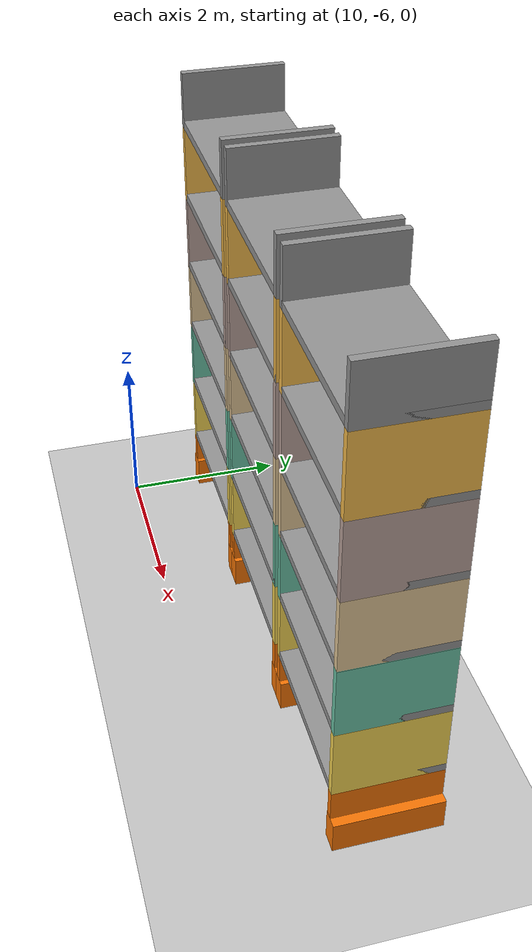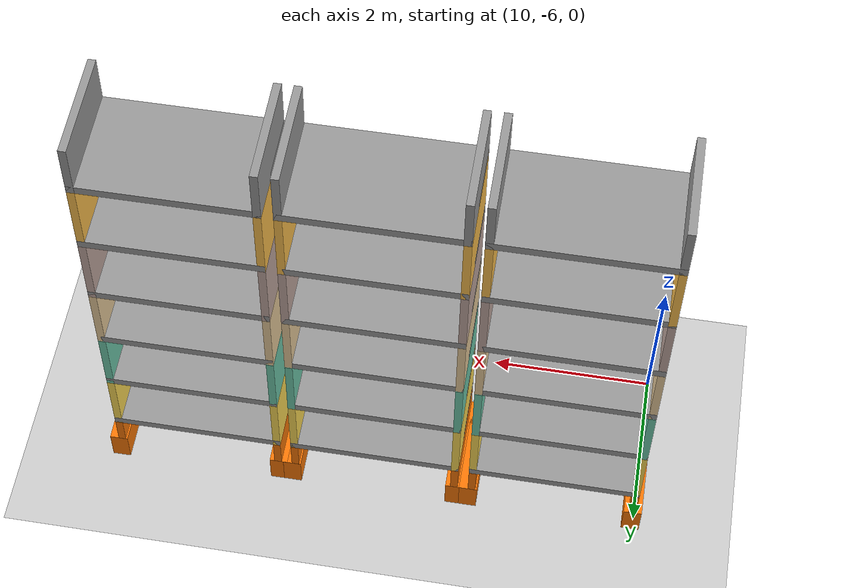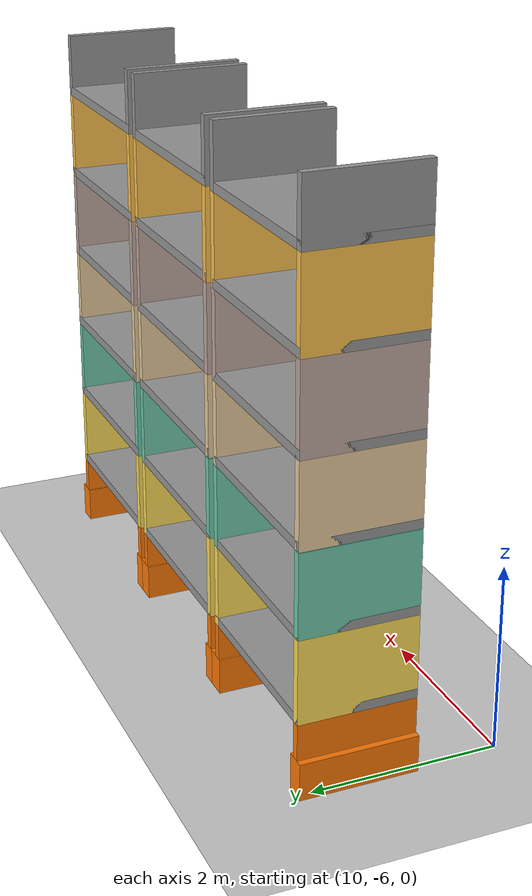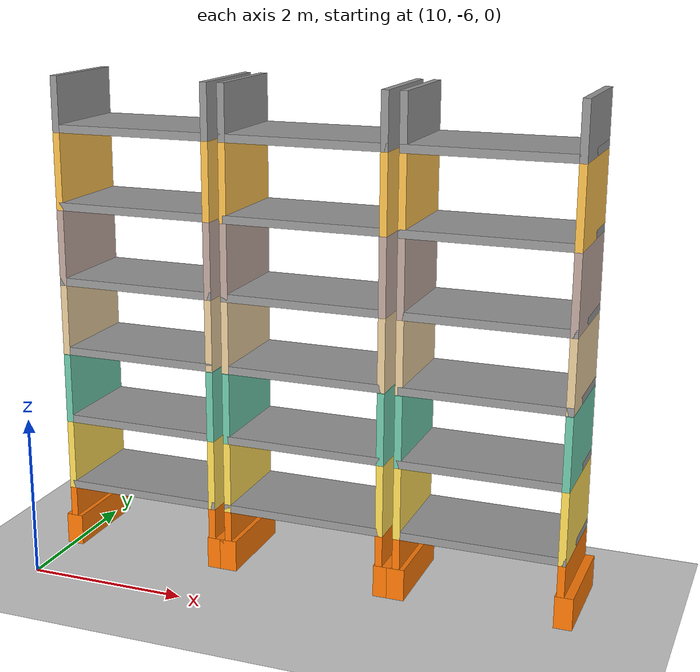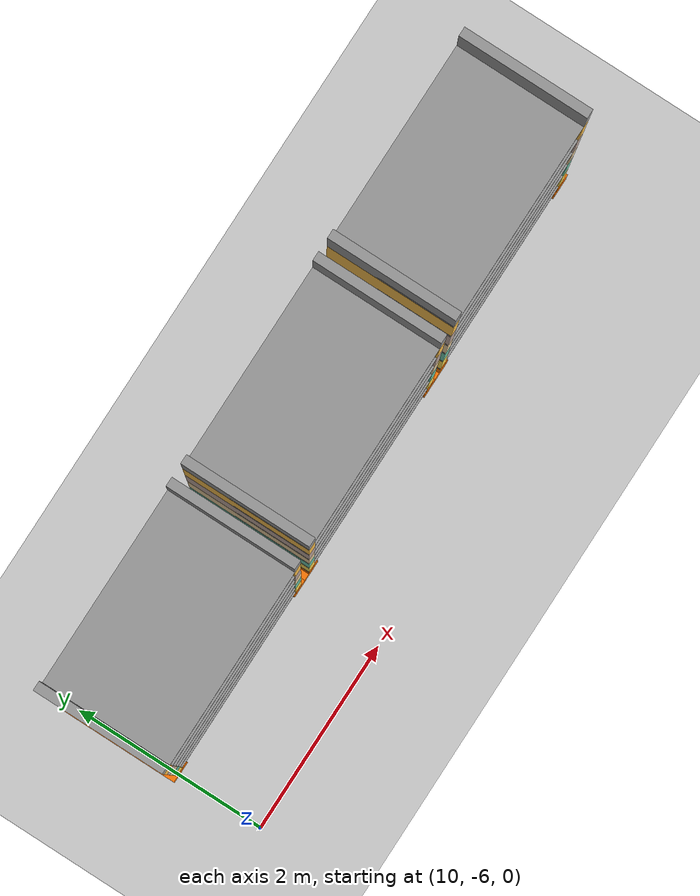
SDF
<sdf version="1.6">
 <world name="pseudo_world1">
  <model name="ground_plane">
   <static>1</static>
   <link name="link">
    <collision name="collision">
     <geometry><plane><normal>0 0 1</normal><size>100 100</size></plane></geometry>
     <surface><friction><ode><mu>100</mu><mu2>50</mu2></ode></friction></surface>
    </collision>
    <visual name="visual">
     <cast_shadows>0</cast_shadows>
     <geometry><plane><normal>0 0 1</normal><size>100 100</size></plane></geometry>
     <material>
      <script><uri>file://media/materials/scripts/gazebo.material</uri><name>Gazebo/Grey</name></script>
     </material>
    </visual>
   </link>
  </model>
  <model name="rack_whole_8">
   <static>1</static>
   <pose>11.05 -4.478 0 0 -0 0</pose>
   <link name="Base_L">
    <collision name="Base_L_Collision">
     <geometry><box><size>1.258 0.22 0.4</size></box></geometry>
     <pose>0 0 0.2 0 -0 0</pose>
    </collision>
    <visual name="Base_L_Visual">
     <pose>0 0 0.2 0 -0 0</pose>
     <geometry><box><size>1.258 0.22 0.4</size></box></geometry>
     <material>
      <script><uri>file://media/materials/scripts/gazebo.material</uri><name>Gazebo/Grey</name></script>
      <ambient>0.996078 0.47451 0.0196078 1</ambient>
     </material>
     <meta><layer>0</layer></meta>
    </visual>
    <pose>-1.02 0 0 0 -0 1.5708</pose>
   </link>
   <link name="Base_R">
    <collision name="Base_R_Collision">
     <geometry><box><size>1.258 0.22 0.4</size></box></geometry>
     <pose>0 0 0.2 0 -0 0</pose>
    </collision>
    <visual name="Base_R_Visual">
     <pose>0 0 0.2 0 -0 0</pose>
     <geometry><box><size>1.258 0.22 0.4</size></box></geometry>
     <material>
      <script><uri>file://media/materials/scripts/gazebo.material</uri><name>Gazebo/Grey</name></script>
      <ambient>0.996078 0.47451 0.0196078 1</ambient>
     </material>
     <meta><layer>0</layer></meta>
    </visual>
    <pose>1.02 0 0 0 -0 1.5708</pose>
   </link>
   <link name="Wall_1_L">
    <collision name="Wall_1_L_Collision">
     <geometry><box><size>1.258 0.09 0.387</size></box></geometry>
     <pose>0 0 0.1935 0 -0 0</pose>
    </collision>
    <visual name="Wall_1_L_Visual">
     <pose>0 0 0.1935 0 -0 0</pose>
     <geometry><box><size>1.258 0.09 0.387</size></box></geometry>
     <material>
      <script><uri>file://media/materials/scripts/gazebo.material</uri><name>Gazebo/Grey</name></script>
      <ambient>0.996078 0.47451 0.0196078 1</ambient>
     </material>
     <meta><layer>1</layer></meta>
    </visual>
    <pose>-1.015 0 0.4 0 -0 1.5708</pose>
   </link>
   <link name="Wall_1_R">
    <collision name="Wall_1_R_Collision">
     <geometry><box><size>1.258 0.09 0.387</size></box></geometry>
     <pose>0 0 0.1935 0 -0 0</pose>
    </collision>
    <visual name="Wall_1_R_Visual">
     <pose>0 0 0.1935 0 -0 0</pose>
     <geometry><box><size>1.258 0.09 0.387</size></box></geometry>
     <material>
      <script><uri>file://media/materials/scripts/gazebo.material</uri><name>Gazebo/Grey</name></script>
      <ambient>0.996078 0.47451 0.0196078 1</ambient>
     </material>
     <meta><layer>1</layer></meta>
    </visual>
    <pose>0.975 0 0.4 0 -0 1.5708</pose>
   </link>
   <link name="Floor_1">
    <collision name="Floor_1_Collision">
     <geometry><box><size>2.08 1.258 0.1</size></box></geometry>
     <pose>0 0 0.05 0 -0 0</pose>
    </collision>
    <visual name="Floor_1_Visual">
     <pose>0 0 0.05 0 -0 0</pose>
     <geometry><box><size>2.08 1.258 0.1</size></box></geometry>
     <material>
      <script><uri>file://media/materials/scripts/gazebo.material</uri><name>Gazebo/Grey</name></script>
      <ambient>1 1 1 1</ambient>
     </material>
     <meta><layer>2</layer></meta>
    </visual>
    <pose>-0.02 0 0.787 0 -0 0</pose>
   </link>
   <link name="Wall_2_L">
    <collision name="Wall_2_L_Collision">
     <geometry><box><size>1.258 0.09 0.905</size></box></geometry>
     <pose>0 0 0.4525 0 -0 0</pose>
    </collision>
    <visual name="Wall_2_L_Visual">
     <pose>0 0 0.4525 0 -0 0</pose>
     <geometry><box><size>1.258 0.09 0.905</size></box></geometry>
     <material>
      <script><uri>file://media/materials/scripts/gazebo.material</uri><name>Gazebo/Grey</name></script>
      <ambient>1 0.87 0.34 1</ambient>
     </material>
     <meta><layer>2</layer></meta>
    </visual>
    <pose>-1.015 0 0.787 0 -0 1.5708</pose>
   </link>
   <link name="Wall_2_R">
    <collision name="Wall_2_R_Collision">
     <geometry><box><size>1.258 0.09 0.905</size></box></geometry>
     <pose>0 0 0.4525 0 -0 0</pose>
    </collision>
    <visual name="Wall_2_R_Visual">
     <pose>0 0 0.4525 0 -0 0</pose>
     <geometry><box><size>1.258 0.09 0.905</size></box></geometry>
     <material>
      <script><uri>file://media/materials/scripts/gazebo.material</uri><name>Gazebo/Grey</name></script>
      <ambient>1 0.87 0.34 1</ambient>
     </material>
     <meta><layer>2</layer></meta>
    </visual>
    <pose>0.975 0 0.787 0 -0 1.5708</pose>
   </link>
   <link name="Floor_2">
    <collision name="Floor_2_Collision">
     <geometry><box><size>2.08 1.258 0.1</size></box></geometry>
     <pose>0 0 0.05 0 -0 0</pose>
    </collision>
    <visual name="Floor_2_Visual">
     <pose>0 0 0.05 0 -0 0</pose>
     <geometry><box><size>2.08 1.258 0.1</size></box></geometry>
     <material>
      <script><uri>file://media/materials/scripts/gazebo.material</uri><name>Gazebo/Grey</name></script>
      <ambient>1 1 1 1</ambient>
     </material>
     <meta><layer>3</layer></meta>
    </visual>
    <pose>-0.02 0 1.692 0 -0 0</pose>
   </link>
   <link name="Wall_3_L">
    <collision name="Wall_3_L_Collision">
     <geometry><box><size>1.258 0.09 0.899</size></box></geometry>
     <pose>0 0 0.4495 0 -0 0</pose>
    </collision>
    <visual name="Wall_3_L_Visual">
     <pose>0 0 0.4495 0 -0 0</pose>
     <geometry><box><size>1.258 0.09 0.899</size></box></geometry>
     <material>
      <script><uri>file://media/materials/scripts/gazebo.material</uri><name>Gazebo/Grey</name></script>
      <ambient>0.435294 0.796078 0.67451 1</ambient>
     </material>
     <meta><layer>3</layer></meta>
    </visual>
    <pose>-1.015 0 1.692 0 -0 1.5708</pose>
   </link>
   <link name="Wall_3_R">
    <collision name="Wall_3_R_Collision">
     <geometry><box><size>1.258 0.09 0.899</size></box></geometry>
     <pose>0 0 0.4495 0 -0 0</pose>
    </collision>
    <visual name="Wall_3_R_Visual">
     <pose>0 0 0.4495 0 -0 0</pose>
     <geometry><box><size>1.258 0.09 0.899</size></box></geometry>
     <material>
      <script><uri>file://media/materials/scripts/gazebo.material</uri><name>Gazebo/Grey</name></script>
      <ambient>0.435294 0.796078 0.67451 1</ambient>
     </material>
     <meta><layer>3</layer></meta>
    </visual>
    <pose>0.975 0 1.692 0 -0 1.5708</pose>
   </link>
   <link name="Floor_3">
    <collision name="Floor_3_Collision">
     <geometry><box><size>2.08 1.258 0.1</size></box></geometry>
     <pose>0 0 0.05 0 -0 0</pose>
    </collision>
    <visual name="Floor_3_Visual">
     <pose>0 0 0.05 0 -0 0</pose>
     <geometry><box><size>2.08 1.258 0.1</size></box></geometry>
     <material>
      <script><uri>file://media/materials/scripts/gazebo.material</uri><name>Gazebo/Grey</name></script>
      <ambient>1 1 1 1</ambient>
     </material>
     <meta><layer>4</layer></meta>
    </visual>
    <pose>-0.02 0 2.597 0 -0 0</pose>
   </link>
   <link name="Wall_4_L">
    <collision name="Wall_4_L_Collision">
     <geometry><box><size>1.258 0.09 0.9</size></box></geometry>
     <pose>0 0 0.45 0 -0 0</pose>
    </collision>
    <visual name="Wall_4_L_Visual">
     <pose>0 0 0.45 0 -0 0</pose>
     <geometry><box><size>1.258 0.09 0.9</size></box></geometry>
     <material>
      <script><uri>file://media/materials/scripts/gazebo.material</uri><name>Gazebo/Grey</name></script>
      <ambient>0.921569 0.807843 0.615686 1</ambient>
     </material>
     <meta><layer>4</layer></meta>
    </visual>
    <pose>-1.015 0 2.597 0 -0 1.5708</pose>
   </link>
   <link name="Wall_4_R">
    <collision name="Wall_4_R_Collision">
     <geometry><box><size>1.258 0.09 0.9</size></box></geometry>
     <pose>0 0 0.45 0 -0 0</pose>
    </collision>
    <visual name="Wall_4_R_Visual">
     <pose>0 0 0.45 0 -0 0</pose>
     <geometry><box><size>1.258 0.09 0.9</size></box></geometry>
     <material>
      <script><uri>file://media/materials/scripts/gazebo.material</uri><name>Gazebo/Grey</name></script>
      <ambient>0.921569 0.807843 0.615686 1</ambient>
     </material>
     <meta><layer>4</layer></meta>
    </visual>
    <pose>0.975 0 2.597 0 -0 1.5708</pose>
   </link>
   <link name="Floor_4">
    <collision name="Floor_4_Collision">
     <geometry><box><size>2.08 1.258 0.1</size></box></geometry>
     <pose>0 0 0.05 0 -0 0</pose>
    </collision>
    <visual name="Floor_4_Visual">
     <pose>0 0 0.05 0 -0 0</pose>
     <geometry><box><size>2.08 1.258 0.1</size></box></geometry>
     <material>
      <script><uri>file://media/materials/scripts/gazebo.material</uri><name>Gazebo/Grey</name></script>
      <ambient>1 1 1 1</ambient>
     </material>
     <meta><layer>5</layer></meta>
    </visual>
    <pose>-0.02 0 3.497 0 -0 0</pose>
   </link>
   <link name="Wall_5_L">
    <collision name="Wall_5_L_Collision">
     <geometry><box><size>1.258 0.09 0.952</size></box></geometry>
     <pose>0 0 0.476 0 -0 0</pose>
    </collision>
    <visual name="Wall_5_L_Visual">
     <pose>0 0 0.476 0 -0 0</pose>
     <geometry><box><size>1.258 0.09 0.952</size></box></geometry>
     <material>
      <script><uri>file://media/materials/scripts/gazebo.material</uri><name>Gazebo/Grey</name></script>
      <ambient>0.760784 0.662745 0.627451 1</ambient>
     </material>
     <meta><layer>5</layer></meta>
    </visual>
    <pose>-1.015 0 3.497 0 -0 1.5708</pose>
   </link>
   <link name="Wall_5_R">
    <collision name="Wall_5_R_Collision">
     <geometry><box><size>1.258 0.09 0.952</size></box></geometry>
     <pose>0 0 0.476 0 -0 0</pose>
    </collision>
    <visual name="Wall_5_R_Visual">
     <pose>0 0 0.476 0 -0 0</pose>
     <geometry><box><size>1.258 0.09 0.952</size></box></geometry>
     <material>
      <script><uri>file://media/materials/scripts/gazebo.material</uri><name>Gazebo/Grey</name></script>
      <ambient>0.760784 0.662745 0.627451 1</ambient>
     </material>
     <meta><layer>5</layer></meta>
    </visual>
    <pose>0.975 0 3.497 0 -0 1.5708</pose>
   </link>
   <link name="Floor_5">
    <collision name="Floor_5_Collision">
     <geometry><box><size>2.08 1.258 0.1</size></box></geometry>
     <pose>0 0 0.05 0 -0 0</pose>
    </collision>
    <visual name="Floor_5_Visual">
     <pose>0 0 0.05 0 -0 0</pose>
     <geometry><box><size>2.08 1.258 0.1</size></box></geometry>
     <material>
      <script><uri>file://media/materials/scripts/gazebo.material</uri><name>Gazebo/Grey</name></script>
      <ambient>1 1 1 1</ambient>
     </material>
     <meta><layer>6</layer></meta>
    </visual>
    <pose>-0.02 0 4.449 0 -0 0</pose>
   </link>
   <link name="Wall_6_L">
    <collision name="Wall_6_L_Collision">
     <geometry><box><size>1.258 0.09 0.957</size></box></geometry>
     <pose>0 0 0.4785 0 -0 0</pose>
    </collision>
    <visual name="Wall_6_L_Visual">
     <pose>0 0 0.4785 0 -0 0</pose>
     <geometry><box><size>1.258 0.09 0.957</size></box></geometry>
     <material>
      <script><uri>file://media/materials/scripts/gazebo.material</uri><name>Gazebo/Grey</name></script>
      <ambient>1 0.764706 0.305882 1</ambient>
     </material>
     <meta><layer>6</layer></meta>
    </visual>
    <pose>-1.015 0 4.449 0 -0 1.5708</pose>
   </link>
   <link name="Wall_6_R">
    <collision name="Wall_6_R_Collision">
     <geometry><box><size>1.258 0.09 0.957</size></box></geometry>
     <pose>0 0 0.4785 0 -0 0</pose>
    </collision>
    <visual name="Wall_6_R_Visual">
     <pose>0 0 0.4785 0 -0 0</pose>
     <geometry><box><size>1.258 0.09 0.957</size></box></geometry>
     <material>
      <script><uri>file://media/materials/scripts/gazebo.material</uri><name>Gazebo/Grey</name></script>
      <ambient>1 0.764706 0.305882 1</ambient>
     </material>
     <meta><layer>6</layer></meta>
    </visual>
    <pose>0.975 0 4.449 0 -0 1.5708</pose>
   </link>
   <link name="Floor_6">
    <collision name="Floor_6_Collision">
     <geometry><box><size>2.08 1.258 0.1</size></box></geometry>
     <pose>0 0 0.05 0 -0 0</pose>
    </collision>
    <visual name="Floor_6_Visual">
     <pose>0 0 0.05 0 -0 0</pose>
     <geometry><box><size>2.08 1.258 0.1</size></box></geometry>
     <material>
      <script><uri>file://media/materials/scripts/gazebo.material</uri><name>Gazebo/Grey</name></script>
      <ambient>1 1 1 1</ambient>
     </material>
     <meta><layer>7</layer></meta>
    </visual>
    <pose>-0.02 0 5.406 0 -0 0</pose>
   </link>
   <link name="Wall_7_L">
    <collision name="Wall_7_L_Collision">
     <geometry><box><size>1.258 0.09 0.685</size></box></geometry>
     <pose>0 0 0.3425 0 -0 0</pose>
    </collision>
    <visual name="Wall_7_L_Visual">
     <pose>0 0 0.3425 0 -0 0</pose>
     <geometry><box><size>1.258 0.09 0.685</size></box></geometry>
     <material>
      <script><uri>file://media/materials/scripts/gazebo.material</uri><name>Gazebo/Grey</name></script>
      <ambient>1 1 1 1</ambient>
     </material>
     <meta><layer>7</layer></meta>
    </visual>
    <pose>-1.015 0 5.406 0 -0 1.5708</pose>
   </link>
   <link name="Wall_7_R">
    <collision name="Wall_7_R_Collision">
     <geometry><box><size>1.258 0.09 0.685</size></box></geometry>
     <pose>0 0 0.3425 0 -0 0</pose>
    </collision>
    <visual name="Wall_7_R_Visual">
     <pose>0 0 0.3425 0 -0 0</pose>
     <geometry><box><size>1.258 0.09 0.685</size></box></geometry>
     <material>
      <script><uri>file://media/materials/scripts/gazebo.material</uri><name>Gazebo/Grey</name></script>
      <ambient>1 1 1 1</ambient>
     </material>
     <meta><layer>7</layer></meta>
    </visual>
    <pose>0.975 0 5.406 0 -0 1.5708</pose>
   </link>
  </model>
  <model name="rack_whole_9">
   <static>1</static>
   <pose>13.26 -4.478 0 0 -0 0</pose>
   <link name="Base_L">
    <collision name="Base_L_Collision">
     <geometry><box><size>1.258 0.22 0.4</size></box></geometry>
     <pose>0 0 0.2 0 -0 0</pose>
    </collision>
    <visual name="Base_L_Visual">
     <pose>0 0 0.2 0 -0 0</pose>
     <geometry><box><size>1.258 0.22 0.4</size></box></geometry>
     <material>
      <script><uri>file://media/materials/scripts/gazebo.material</uri><name>Gazebo/Grey</name></script>
      <ambient>0.996078 0.47451 0.0196078 1</ambient>
     </material>
     <meta><layer>0</layer></meta>
    </visual>
    <pose>-1.02 0 0 0 -0 1.5708</pose>
   </link>
   <link name="Base_R">
    <collision name="Base_R_Collision">
     <geometry><box><size>1.258 0.22 0.4</size></box></geometry>
     <pose>0 0 0.2 0 -0 0</pose>
    </collision>
    <visual name="Base_R_Visual">
     <pose>0 0 0.2 0 -0 0</pose>
     <geometry><box><size>1.258 0.22 0.4</size></box></geometry>
     <material>
      <script><uri>file://media/materials/scripts/gazebo.material</uri><name>Gazebo/Grey</name></script>
      <ambient>0.996078 0.47451 0.0196078 1</ambient>
     </material>
     <meta><layer>0</layer></meta>
    </visual>
    <pose>1.02 0 0 0 -0 1.5708</pose>
   </link>
   <link name="Wall_1_L">
    <collision name="Wall_1_L_Collision">
     <geometry><box><size>1.258 0.09 0.387</size></box></geometry>
     <pose>0 0 0.1935 0 -0 0</pose>
    </collision>
    <visual name="Wall_1_L_Visual">
     <pose>0 0 0.1935 0 -0 0</pose>
     <geometry><box><size>1.258 0.09 0.387</size></box></geometry>
     <material>
      <script><uri>file://media/materials/scripts/gazebo.material</uri><name>Gazebo/Grey</name></script>
      <ambient>0.996078 0.47451 0.0196078 1</ambient>
     </material>
     <meta><layer>1</layer></meta>
    </visual>
    <pose>-1.015 0 0.4 0 -0 1.5708</pose>
   </link>
   <link name="Wall_1_R">
    <collision name="Wall_1_R_Collision">
     <geometry><box><size>1.258 0.09 0.387</size></box></geometry>
     <pose>0 0 0.1935 0 -0 0</pose>
    </collision>
    <visual name="Wall_1_R_Visual">
     <pose>0 0 0.1935 0 -0 0</pose>
     <geometry><box><size>1.258 0.09 0.387</size></box></geometry>
     <material>
      <script><uri>file://media/materials/scripts/gazebo.material</uri><name>Gazebo/Grey</name></script>
      <ambient>0.996078 0.47451 0.0196078 1</ambient>
     </material>
     <meta><layer>1</layer></meta>
    </visual>
    <pose>0.975 0 0.4 0 -0 1.5708</pose>
   </link>
   <link name="Floor_1">
    <collision name="Floor_1_Collision">
     <geometry><box><size>2.08 1.258 0.1</size></box></geometry>
     <pose>0 0 0.05 0 -0 0</pose>
    </collision>
    <visual name="Floor_1_Visual">
     <pose>0 0 0.05 0 -0 0</pose>
     <geometry><box><size>2.08 1.258 0.1</size></box></geometry>
     <material>
      <script><uri>file://media/materials/scripts/gazebo.material</uri><name>Gazebo/Grey</name></script>
      <ambient>1 1 1 1</ambient>
     </material>
     <meta><layer>2</layer></meta>
    </visual>
    <pose>-0.02 0 0.787 0 -0 0</pose>
   </link>
   <link name="Wall_2_L">
    <collision name="Wall_2_L_Collision">
     <geometry><box><size>1.258 0.09 0.905</size></box></geometry>
     <pose>0 0 0.4525 0 -0 0</pose>
    </collision>
    <visual name="Wall_2_L_Visual">
     <pose>0 0 0.4525 0 -0 0</pose>
     <geometry><box><size>1.258 0.09 0.905</size></box></geometry>
     <material>
      <script><uri>file://media/materials/scripts/gazebo.material</uri><name>Gazebo/Grey</name></script>
      <ambient>1 0.87 0.34 1</ambient>
     </material>
     <meta><layer>2</layer></meta>
    </visual>
    <pose>-1.015 0 0.787 0 -0 1.5708</pose>
   </link>
   <link name="Wall_2_R">
    <collision name="Wall_2_R_Collision">
     <geometry><box><size>1.258 0.09 0.905</size></box></geometry>
     <pose>0 0 0.4525 0 -0 0</pose>
    </collision>
    <visual name="Wall_2_R_Visual">
     <pose>0 0 0.4525 0 -0 0</pose>
     <geometry><box><size>1.258 0.09 0.905</size></box></geometry>
     <material>
      <script><uri>file://media/materials/scripts/gazebo.material</uri><name>Gazebo/Grey</name></script>
      <ambient>1 0.87 0.34 1</ambient>
     </material>
     <meta><layer>2</layer></meta>
    </visual>
    <pose>0.975 0 0.787 0 -0 1.5708</pose>
   </link>
   <link name="Floor_2">
    <collision name="Floor_2_Collision">
     <geometry><box><size>2.08 1.258 0.1</size></box></geometry>
     <pose>0 0 0.05 0 -0 0</pose>
    </collision>
    <visual name="Floor_2_Visual">
     <pose>0 0 0.05 0 -0 0</pose>
     <geometry><box><size>2.08 1.258 0.1</size></box></geometry>
     <material>
      <script><uri>file://media/materials/scripts/gazebo.material</uri><name>Gazebo/Grey</name></script>
      <ambient>1 1 1 1</ambient>
     </material>
     <meta><layer>3</layer></meta>
    </visual>
    <pose>-0.02 0 1.692 0 -0 0</pose>
   </link>
   <link name="Wall_3_L">
    <collision name="Wall_3_L_Collision">
     <geometry><box><size>1.258 0.09 0.899</size></box></geometry>
     <pose>0 0 0.4495 0 -0 0</pose>
    </collision>
    <visual name="Wall_3_L_Visual">
     <pose>0 0 0.4495 0 -0 0</pose>
     <geometry><box><size>1.258 0.09 0.899</size></box></geometry>
     <material>
      <script><uri>file://media/materials/scripts/gazebo.material</uri><name>Gazebo/Grey</name></script>
      <ambient>0.435294 0.796078 0.67451 1</ambient>
     </material>
     <meta><layer>3</layer></meta>
    </visual>
    <pose>-1.015 0 1.692 0 -0 1.5708</pose>
   </link>
   <link name="Wall_3_R">
    <collision name="Wall_3_R_Collision">
     <geometry><box><size>1.258 0.09 0.899</size></box></geometry>
     <pose>0 0 0.4495 0 -0 0</pose>
    </collision>
    <visual name="Wall_3_R_Visual">
     <pose>0 0 0.4495 0 -0 0</pose>
     <geometry><box><size>1.258 0.09 0.899</size></box></geometry>
     <material>
      <script><uri>file://media/materials/scripts/gazebo.material</uri><name>Gazebo/Grey</name></script>
      <ambient>0.435294 0.796078 0.67451 1</ambient>
     </material>
     <meta><layer>3</layer></meta>
    </visual>
    <pose>0.975 0 1.692 0 -0 1.5708</pose>
   </link>
   <link name="Floor_3">
    <collision name="Floor_3_Collision">
     <geometry><box><size>2.08 1.258 0.1</size></box></geometry>
     <pose>0 0 0.05 0 -0 0</pose>
    </collision>
    <visual name="Floor_3_Visual">
     <pose>0 0 0.05 0 -0 0</pose>
     <geometry><box><size>2.08 1.258 0.1</size></box></geometry>
     <material>
      <script><uri>file://media/materials/scripts/gazebo.material</uri><name>Gazebo/Grey</name></script>
      <ambient>1 1 1 1</ambient>
     </material>
     <meta><layer>4</layer></meta>
    </visual>
    <pose>-0.02 0 2.597 0 -0 0</pose>
   </link>
   <link name="Wall_4_L">
    <collision name="Wall_4_L_Collision">
     <geometry><box><size>1.258 0.09 0.9</size></box></geometry>
     <pose>0 0 0.45 0 -0 0</pose>
    </collision>
    <visual name="Wall_4_L_Visual">
     <pose>0 0 0.45 0 -0 0</pose>
     <geometry><box><size>1.258 0.09 0.9</size></box></geometry>
     <material>
      <script><uri>file://media/materials/scripts/gazebo.material</uri><name>Gazebo/Grey</name></script>
      <ambient>0.921569 0.807843 0.615686 1</ambient>
     </material>
     <meta><layer>4</layer></meta>
    </visual>
    <pose>-1.015 0 2.597 0 -0 1.5708</pose>
   </link>
   <link name="Wall_4_R">
    <collision name="Wall_4_R_Collision">
     <geometry><box><size>1.258 0.09 0.9</size></box></geometry>
     <pose>0 0 0.45 0 -0 0</pose>
    </collision>
    <visual name="Wall_4_R_Visual">
     <pose>0 0 0.45 0 -0 0</pose>
     <geometry><box><size>1.258 0.09 0.9</size></box></geometry>
     <material>
      <script><uri>file://media/materials/scripts/gazebo.material</uri><name>Gazebo/Grey</name></script>
      <ambient>0.921569 0.807843 0.615686 1</ambient>
     </material>
     <meta><layer>4</layer></meta>
    </visual>
    <pose>0.975 0 2.597 0 -0 1.5708</pose>
   </link>
   <link name="Floor_4">
    <collision name="Floor_4_Collision">
     <geometry><box><size>2.08 1.258 0.1</size></box></geometry>
     <pose>0 0 0.05 0 -0 0</pose>
    </collision>
    <visual name="Floor_4_Visual">
     <pose>0 0 0.05 0 -0 0</pose>
     <geometry><box><size>2.08 1.258 0.1</size></box></geometry>
     <material>
      <script><uri>file://media/materials/scripts/gazebo.material</uri><name>Gazebo/Grey</name></script>
      <ambient>1 1 1 1</ambient>
     </material>
     <meta><layer>5</layer></meta>
    </visual>
    <pose>-0.02 0 3.497 0 -0 0</pose>
   </link>
   <link name="Wall_5_L">
    <collision name="Wall_5_L_Collision">
     <geometry><box><size>1.258 0.09 0.952</size></box></geometry>
     <pose>0 0 0.476 0 -0 0</pose>
    </collision>
    <visual name="Wall_5_L_Visual">
     <pose>0 0 0.476 0 -0 0</pose>
     <geometry><box><size>1.258 0.09 0.952</size></box></geometry>
     <material>
      <script><uri>file://media/materials/scripts/gazebo.material</uri><name>Gazebo/Grey</name></script>
      <ambient>0.760784 0.662745 0.627451 1</ambient>
     </material>
     <meta><layer>5</layer></meta>
    </visual>
    <pose>-1.015 0 3.497 0 -0 1.5708</pose>
   </link>
   <link name="Wall_5_R">
    <collision name="Wall_5_R_Collision">
     <geometry><box><size>1.258 0.09 0.952</size></box></geometry>
     <pose>0 0 0.476 0 -0 0</pose>
    </collision>
    <visual name="Wall_5_R_Visual">
     <pose>0 0 0.476 0 -0 0</pose>
     <geometry><box><size>1.258 0.09 0.952</size></box></geometry>
     <material>
      <script><uri>file://media/materials/scripts/gazebo.material</uri><name>Gazebo/Grey</name></script>
      <ambient>0.760784 0.662745 0.627451 1</ambient>
     </material>
     <meta><layer>5</layer></meta>
    </visual>
    <pose>0.975 0 3.497 0 -0 1.5708</pose>
   </link>
   <link name="Floor_5">
    <collision name="Floor_5_Collision">
     <geometry><box><size>2.08 1.258 0.1</size></box></geometry>
     <pose>0 0 0.05 0 -0 0</pose>
    </collision>
    <visual name="Floor_5_Visual">
     <pose>0 0 0.05 0 -0 0</pose>
     <geometry><box><size>2.08 1.258 0.1</size></box></geometry>
     <material>
      <script><uri>file://media/materials/scripts/gazebo.material</uri><name>Gazebo/Grey</name></script>
      <ambient>1 1 1 1</ambient>
     </material>
     <meta><layer>6</layer></meta>
    </visual>
    <pose>-0.02 0 4.449 0 -0 0</pose>
   </link>
   <link name="Wall_6_L">
    <collision name="Wall_6_L_Collision">
     <geometry><box><size>1.258 0.09 0.957</size></box></geometry>
     <pose>0 0 0.4785 0 -0 0</pose>
    </collision>
    <visual name="Wall_6_L_Visual">
     <pose>0 0 0.4785 0 -0 0</pose>
     <geometry><box><size>1.258 0.09 0.957</size></box></geometry>
     <material>
      <script><uri>file://media/materials/scripts/gazebo.material</uri><name>Gazebo/Grey</name></script>
      <ambient>1 0.764706 0.305882 1</ambient>
     </material>
     <meta><layer>6</layer></meta>
    </visual>
    <pose>-1.015 0 4.449 0 -0 1.5708</pose>
   </link>
   <link name="Wall_6_R">
    <collision name="Wall_6_R_Collision">
     <geometry><box><size>1.258 0.09 0.957</size></box></geometry>
     <pose>0 0 0.4785 0 -0 0</pose>
    </collision>
    <visual name="Wall_6_R_Visual">
     <pose>0 0 0.4785 0 -0 0</pose>
     <geometry><box><size>1.258 0.09 0.957</size></box></geometry>
     <material>
      <script><uri>file://media/materials/scripts/gazebo.material</uri><name>Gazebo/Grey</name></script>
      <ambient>1 0.764706 0.305882 1</ambient>
     </material>
     <meta><layer>6</layer></meta>
    </visual>
    <pose>0.975 0 4.449 0 -0 1.5708</pose>
   </link>
   <link name="Floor_6">
    <collision name="Floor_6_Collision">
     <geometry><box><size>2.08 1.258 0.1</size></box></geometry>
     <pose>0 0 0.05 0 -0 0</pose>
    </collision>
    <visual name="Floor_6_Visual">
     <pose>0 0 0.05 0 -0 0</pose>
     <geometry><box><size>2.08 1.258 0.1</size></box></geometry>
     <material>
      <script><uri>file://media/materials/scripts/gazebo.material</uri><name>Gazebo/Grey</name></script>
      <ambient>1 1 1 1</ambient>
     </material>
     <meta><layer>7</layer></meta>
    </visual>
    <pose>-0.02 0 5.406 0 -0 0</pose>
   </link>
   <link name="Wall_7_L">
    <collision name="Wall_7_L_Collision">
     <geometry><box><size>1.258 0.09 0.685</size></box></geometry>
     <pose>0 0 0.3425 0 -0 0</pose>
    </collision>
    <visual name="Wall_7_L_Visual">
     <pose>0 0 0.3425 0 -0 0</pose>
     <geometry><box><size>1.258 0.09 0.685</size></box></geometry>
     <material>
      <script><uri>file://media/materials/scripts/gazebo.material</uri><name>Gazebo/Grey</name></script>
      <ambient>1 1 1 1</ambient>
     </material>
     <meta><layer>7</layer></meta>
    </visual>
    <pose>-1.015 0 5.406 0 -0 1.5708</pose>
   </link>
   <link name="Wall_7_R">
    <collision name="Wall_7_R_Collision">
     <geometry><box><size>1.258 0.09 0.685</size></box></geometry>
     <pose>0 0 0.3425 0 -0 0</pose>
    </collision>
    <visual name="Wall_7_R_Visual">
     <pose>0 0 0.3425 0 -0 0</pose>
     <geometry><box><size>1.258 0.09 0.685</size></box></geometry>
     <material>
      <script><uri>file://media/materials/scripts/gazebo.material</uri><name>Gazebo/Grey</name></script>
      <ambient>1 1 1 1</ambient>
     </material>
     <meta><layer>7</layer></meta>
    </visual>
    <pose>0.975 0 5.406 0 -0 1.5708</pose>
   </link>
  </model>
  <model name="rack_whole_10">
   <static>1</static>
   <pose>15.47 -4.478 0 0 -0 0</pose>
   <link name="Base_L">
    <collision name="Base_L_Collision">
     <geometry><box><size>1.258 0.22 0.4</size></box></geometry>
     <pose>0 0 0.2 0 -0 0</pose>
    </collision>
    <visual name="Base_L_Visual">
     <pose>0 0 0.2 0 -0 0</pose>
     <geometry><box><size>1.258 0.22 0.4</size></box></geometry>
     <material>
      <script><uri>file://media/materials/scripts/gazebo.material</uri><name>Gazebo/Grey</name></script>
      <ambient>0.996078 0.47451 0.0196078 1</ambient>
     </material>
     <meta><layer>0</layer></meta>
    </visual>
    <pose>-1.02 0 0 0 -0 1.5708</pose>
   </link>
   <link name="Base_R">
    <collision name="Base_R_Collision">
     <geometry><box><size>1.258 0.22 0.4</size></box></geometry>
     <pose>0 0 0.2 0 -0 0</pose>
    </collision>
    <visual name="Base_R_Visual">
     <pose>0 0 0.2 0 -0 0</pose>
     <geometry><box><size>1.258 0.22 0.4</size></box></geometry>
     <material>
      <script><uri>file://media/materials/scripts/gazebo.material</uri><name>Gazebo/Grey</name></script>
      <ambient>0.996078 0.47451 0.0196078 1</ambient>
     </material>
     <meta><layer>0</layer></meta>
    </visual>
    <pose>1.02 0 0 0 -0 1.5708</pose>
   </link>
   <link name="Wall_1_L">
    <collision name="Wall_1_L_Collision">
     <geometry><box><size>1.258 0.09 0.387</size></box></geometry>
     <pose>0 0 0.1935 0 -0 0</pose>
    </collision>
    <visual name="Wall_1_L_Visual">
     <pose>0 0 0.1935 0 -0 0</pose>
     <geometry><box><size>1.258 0.09 0.387</size></box></geometry>
     <material>
      <script><uri>file://media/materials/scripts/gazebo.material</uri><name>Gazebo/Grey</name></script>
      <ambient>0.996078 0.47451 0.0196078 1</ambient>
     </material>
     <meta><layer>1</layer></meta>
    </visual>
    <pose>-1.015 0 0.4 0 -0 1.5708</pose>
   </link>
   <link name="Wall_1_R">
    <collision name="Wall_1_R_Collision">
     <geometry><box><size>1.258 0.09 0.387</size></box></geometry>
     <pose>0 0 0.1935 0 -0 0</pose>
    </collision>
    <visual name="Wall_1_R_Visual">
     <pose>0 0 0.1935 0 -0 0</pose>
     <geometry><box><size>1.258 0.09 0.387</size></box></geometry>
     <material>
      <script><uri>file://media/materials/scripts/gazebo.material</uri><name>Gazebo/Grey</name></script>
      <ambient>0.996078 0.47451 0.0196078 1</ambient>
     </material>
     <meta><layer>1</layer></meta>
    </visual>
    <pose>0.975 0 0.4 0 -0 1.5708</pose>
   </link>
   <link name="Floor_1">
    <collision name="Floor_1_Collision">
     <geometry><box><size>2.08 1.258 0.1</size></box></geometry>
     <pose>0 0 0.05 0 -0 0</pose>
    </collision>
    <visual name="Floor_1_Visual">
     <pose>0 0 0.05 0 -0 0</pose>
     <geometry><box><size>2.08 1.258 0.1</size></box></geometry>
     <material>
      <script><uri>file://media/materials/scripts/gazebo.material</uri><name>Gazebo/Grey</name></script>
      <ambient>1 1 1 1</ambient>
     </material>
     <meta><layer>2</layer></meta>
    </visual>
    <pose>-0.02 0 0.787 0 -0 0</pose>
   </link>
   <link name="Wall_2_L">
    <collision name="Wall_2_L_Collision">
     <geometry><box><size>1.258 0.09 0.905</size></box></geometry>
     <pose>0 0 0.4525 0 -0 0</pose>
    </collision>
    <visual name="Wall_2_L_Visual">
     <pose>0 0 0.4525 0 -0 0</pose>
     <geometry><box><size>1.258 0.09 0.905</size></box></geometry>
     <material>
      <script><uri>file://media/materials/scripts/gazebo.material</uri><name>Gazebo/Grey</name></script>
      <ambient>1 0.87 0.34 1</ambient>
     </material>
     <meta><layer>2</layer></meta>
    </visual>
    <pose>-1.015 0 0.787 0 -0 1.5708</pose>
   </link>
   <link name="Wall_2_R">
    <collision name="Wall_2_R_Collision">
     <geometry><box><size>1.258 0.09 0.905</size></box></geometry>
     <pose>0 0 0.4525 0 -0 0</pose>
    </collision>
    <visual name="Wall_2_R_Visual">
     <pose>0 0 0.4525 0 -0 0</pose>
     <geometry><box><size>1.258 0.09 0.905</size></box></geometry>
     <material>
      <script><uri>file://media/materials/scripts/gazebo.material</uri><name>Gazebo/Grey</name></script>
      <ambient>1 0.87 0.34 1</ambient>
     </material>
     <meta><layer>2</layer></meta>
    </visual>
    <pose>0.975 0 0.787 0 -0 1.5708</pose>
   </link>
   <link name="Floor_2">
    <collision name="Floor_2_Collision">
     <geometry><box><size>2.08 1.258 0.1</size></box></geometry>
     <pose>0 0 0.05 0 -0 0</pose>
    </collision>
    <visual name="Floor_2_Visual">
     <pose>0 0 0.05 0 -0 0</pose>
     <geometry><box><size>2.08 1.258 0.1</size></box></geometry>
     <material>
      <script><uri>file://media/materials/scripts/gazebo.material</uri><name>Gazebo/Grey</name></script>
      <ambient>1 1 1 1</ambient>
     </material>
     <meta><layer>3</layer></meta>
    </visual>
    <pose>-0.02 0 1.692 0 -0 0</pose>
   </link>
   <link name="Wall_3_L">
    <collision name="Wall_3_L_Collision">
     <geometry><box><size>1.258 0.09 0.899</size></box></geometry>
     <pose>0 0 0.4495 0 -0 0</pose>
    </collision>
    <visual name="Wall_3_L_Visual">
     <pose>0 0 0.4495 0 -0 0</pose>
     <geometry><box><size>1.258 0.09 0.899</size></box></geometry>
     <material>
      <script><uri>file://media/materials/scripts/gazebo.material</uri><name>Gazebo/Grey</name></script>
      <ambient>0.435294 0.796078 0.67451 1</ambient>
     </material>
     <meta><layer>3</layer></meta>
    </visual>
    <pose>-1.015 0 1.692 0 -0 1.5708</pose>
   </link>
   <link name="Wall_3_R">
    <collision name="Wall_3_R_Collision">
     <geometry><box><size>1.258 0.09 0.899</size></box></geometry>
     <pose>0 0 0.4495 0 -0 0</pose>
    </collision>
    <visual name="Wall_3_R_Visual">
     <pose>0 0 0.4495 0 -0 0</pose>
     <geometry><box><size>1.258 0.09 0.899</size></box></geometry>
     <material>
      <script><uri>file://media/materials/scripts/gazebo.material</uri><name>Gazebo/Grey</name></script>
      <ambient>0.435294 0.796078 0.67451 1</ambient>
     </material>
     <meta><layer>3</layer></meta>
    </visual>
    <pose>0.975 0 1.692 0 -0 1.5708</pose>
   </link>
   <link name="Floor_3">
    <collision name="Floor_3_Collision">
     <geometry><box><size>2.08 1.258 0.1</size></box></geometry>
     <pose>0 0 0.05 0 -0 0</pose>
    </collision>
    <visual name="Floor_3_Visual">
     <pose>0 0 0.05 0 -0 0</pose>
     <geometry><box><size>2.08 1.258 0.1</size></box></geometry>
     <material>
      <script><uri>file://media/materials/scripts/gazebo.material</uri><name>Gazebo/Grey</name></script>
      <ambient>1 1 1 1</ambient>
     </material>
     <meta><layer>4</layer></meta>
    </visual>
    <pose>-0.02 0 2.597 0 -0 0</pose>
   </link>
   <link name="Wall_4_L">
    <collision name="Wall_4_L_Collision">
     <geometry><box><size>1.258 0.09 0.9</size></box></geometry>
     <pose>0 0 0.45 0 -0 0</pose>
    </collision>
    <visual name="Wall_4_L_Visual">
     <pose>0 0 0.45 0 -0 0</pose>
     <geometry><box><size>1.258 0.09 0.9</size></box></geometry>
     <material>
      <script><uri>file://media/materials/scripts/gazebo.material</uri><name>Gazebo/Grey</name></script>
      <ambient>0.921569 0.807843 0.615686 1</ambient>
     </material>
     <meta><layer>4</layer></meta>
    </visual>
    <pose>-1.015 0 2.597 0 -0 1.5708</pose>
   </link>
   <link name="Wall_4_R">
    <collision name="Wall_4_R_Collision">
     <geometry><box><size>1.258 0.09 0.9</size></box></geometry>
     <pose>0 0 0.45 0 -0 0</pose>
    </collision>
    <visual name="Wall_4_R_Visual">
     <pose>0 0 0.45 0 -0 0</pose>
     <geometry><box><size>1.258 0.09 0.9</size></box></geometry>
     <material>
      <script><uri>file://media/materials/scripts/gazebo.material</uri><name>Gazebo/Grey</name></script>
      <ambient>0.921569 0.807843 0.615686 1</ambient>
     </material>
     <meta><layer>4</layer></meta>
    </visual>
    <pose>0.975 0 2.597 0 -0 1.5708</pose>
   </link>
   <link name="Floor_4">
    <collision name="Floor_4_Collision">
     <geometry><box><size>2.08 1.258 0.1</size></box></geometry>
     <pose>0 0 0.05 0 -0 0</pose>
    </collision>
    <visual name="Floor_4_Visual">
     <pose>0 0 0.05 0 -0 0</pose>
     <geometry><box><size>2.08 1.258 0.1</size></box></geometry>
     <material>
      <script><uri>file://media/materials/scripts/gazebo.material</uri><name>Gazebo/Grey</name></script>
      <ambient>1 1 1 1</ambient>
     </material>
     <meta><layer>5</layer></meta>
    </visual>
    <pose>-0.02 0 3.497 0 -0 0</pose>
   </link>
   <link name="Wall_5_L">
    <collision name="Wall_5_L_Collision">
     <geometry><box><size>1.258 0.09 0.952</size></box></geometry>
     <pose>0 0 0.476 0 -0 0</pose>
    </collision>
    <visual name="Wall_5_L_Visual">
     <pose>0 0 0.476 0 -0 0</pose>
     <geometry><box><size>1.258 0.09 0.952</size></box></geometry>
     <material>
      <script><uri>file://media/materials/scripts/gazebo.material</uri><name>Gazebo/Grey</name></script>
      <ambient>0.760784 0.662745 0.627451 1</ambient>
     </material>
     <meta><layer>5</layer></meta>
    </visual>
    <pose>-1.015 0 3.497 0 -0 1.5708</pose>
   </link>
   <link name="Wall_5_R">
    <collision name="Wall_5_R_Collision">
     <geometry><box><size>1.258 0.09 0.952</size></box></geometry>
     <pose>0 0 0.476 0 -0 0</pose>
    </collision>
    <visual name="Wall_5_R_Visual">
     <pose>0 0 0.476 0 -0 0</pose>
     <geometry><box><size>1.258 0.09 0.952</size></box></geometry>
     <material>
      <script><uri>file://media/materials/scripts/gazebo.material</uri><name>Gazebo/Grey</name></script>
      <ambient>0.760784 0.662745 0.627451 1</ambient>
     </material>
     <meta><layer>5</layer></meta>
    </visual>
    <pose>0.975 0 3.497 0 -0 1.5708</pose>
   </link>
   <link name="Floor_5">
    <collision name="Floor_5_Collision">
     <geometry><box><size>2.08 1.258 0.1</size></box></geometry>
     <pose>0 0 0.05 0 -0 0</pose>
    </collision>
    <visual name="Floor_5_Visual">
     <pose>0 0 0.05 0 -0 0</pose>
     <geometry><box><size>2.08 1.258 0.1</size></box></geometry>
     <material>
      <script><uri>file://media/materials/scripts/gazebo.material</uri><name>Gazebo/Grey</name></script>
      <ambient>1 1 1 1</ambient>
     </material>
     <meta><layer>6</layer></meta>
    </visual>
    <pose>-0.02 0 4.449 0 -0 0</pose>
   </link>
   <link name="Wall_6_L">
    <collision name="Wall_6_L_Collision">
     <geometry><box><size>1.258 0.09 0.957</size></box></geometry>
     <pose>0 0 0.4785 0 -0 0</pose>
    </collision>
    <visual name="Wall_6_L_Visual">
     <pose>0 0 0.4785 0 -0 0</pose>
     <geometry><box><size>1.258 0.09 0.957</size></box></geometry>
     <material>
      <script><uri>file://media/materials/scripts/gazebo.material</uri><name>Gazebo/Grey</name></script>
      <ambient>1 0.764706 0.305882 1</ambient>
     </material>
     <meta><layer>6</layer></meta>
    </visual>
    <pose>-1.015 0 4.449 0 -0 1.5708</pose>
   </link>
   <link name="Wall_6_R">
    <collision name="Wall_6_R_Collision">
     <geometry><box><size>1.258 0.09 0.957</size></box></geometry>
     <pose>0 0 0.4785 0 -0 0</pose>
    </collision>
    <visual name="Wall_6_R_Visual">
     <pose>0 0 0.4785 0 -0 0</pose>
     <geometry><box><size>1.258 0.09 0.957</size></box></geometry>
     <material>
      <script><uri>file://media/materials/scripts/gazebo.material</uri><name>Gazebo/Grey</name></script>
      <ambient>1 0.764706 0.305882 1</ambient>
     </material>
     <meta><layer>6</layer></meta>
    </visual>
    <pose>0.975 0 4.449 0 -0 1.5708</pose>
   </link>
   <link name="Floor_6">
    <collision name="Floor_6_Collision">
     <geometry><box><size>2.08 1.258 0.1</size></box></geometry>
     <pose>0 0 0.05 0 -0 0</pose>
    </collision>
    <visual name="Floor_6_Visual">
     <pose>0 0 0.05 0 -0 0</pose>
     <geometry><box><size>2.08 1.258 0.1</size></box></geometry>
     <material>
      <script><uri>file://media/materials/scripts/gazebo.material</uri><name>Gazebo/Grey</name></script>
      <ambient>1 1 1 1</ambient>
     </material>
     <meta><layer>7</layer></meta>
    </visual>
    <pose>-0.02 0 5.406 0 -0 0</pose>
   </link>
   <link name="Wall_7_L">
    <collision name="Wall_7_L_Collision">
     <geometry><box><size>1.258 0.09 0.685</size></box></geometry>
     <pose>0 0 0.3425 0 -0 0</pose>
    </collision>
    <visual name="Wall_7_L_Visual">
     <pose>0 0 0.3425 0 -0 0</pose>
     <geometry><box><size>1.258 0.09 0.685</size></box></geometry>
     <material>
      <script><uri>file://media/materials/scripts/gazebo.material</uri><name>Gazebo/Grey</name></script>
      <ambient>1 1 1 1</ambient>
     </material>
     <meta><layer>7</layer></meta>
    </visual>
    <pose>-1.015 0 5.406 0 -0 1.5708</pose>
   </link>
   <link name="Wall_7_R">
    <collision name="Wall_7_R_Collision">
     <geometry><box><size>1.258 0.09 0.685</size></box></geometry>
     <pose>0 0 0.3425 0 -0 0</pose>
    </collision>
    <visual name="Wall_7_R_Visual">
     <pose>0 0 0.3425 0 -0 0</pose>
     <geometry><box><size>1.258 0.09 0.685</size></box></geometry>
     <material>
      <script><uri>file://media/materials/scripts/gazebo.material</uri><name>Gazebo/Grey</name></script>
      <ambient>1 1 1 1</ambient>
     </material>
     <meta><layer>7</layer></meta>
    </visual>
    <pose>0.975 0 5.406 0 -0 1.5708</pose>
   </link>
  </model>
 </world>
</sdf>
